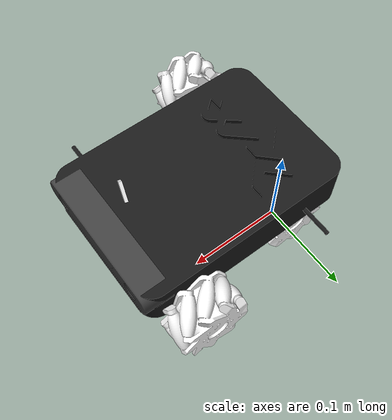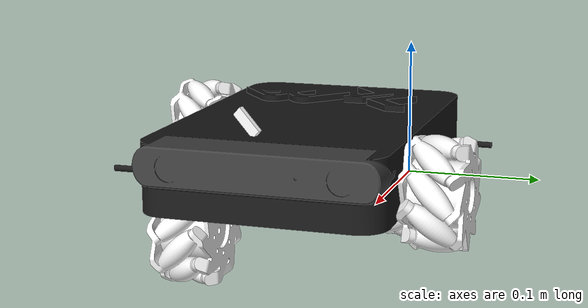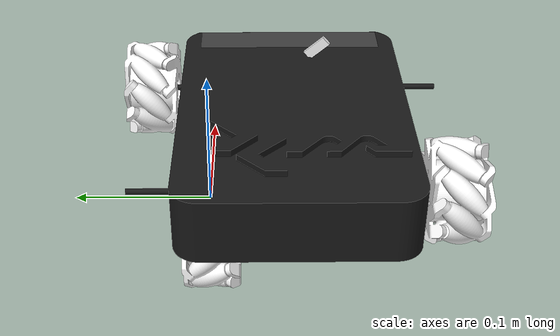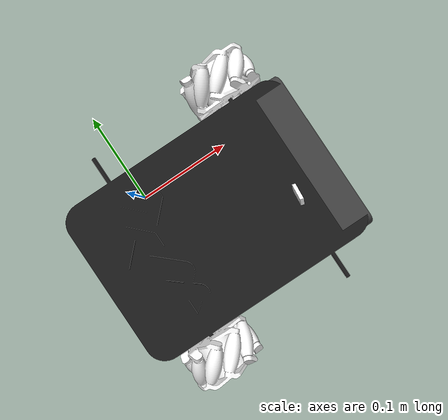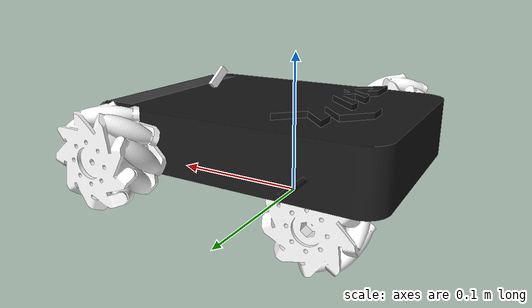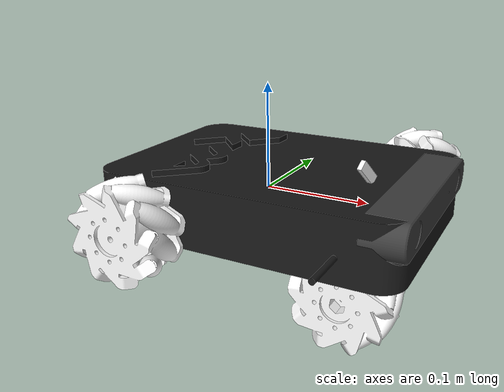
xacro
<?xml version="1.0"?>
<robot xmlns:xacro="http://www.ros.org/wiki/xacro" name="ma_robot">

  <!-- Materials (shared across all assemblies) -->
  <material name="PA_11_Nylon_HP_11_30_with_EOS_P_396_3D_Printer">
    <color rgba="0.247 0.247 0.247 1.0"/>
  </material>
  <material name="Steel">
    <color rgba="1.000 1.000 1.000 1.0"/>
  </material>
  <material name="Acetal_Resin_Black">
    <color rgba="0.098 0.098 0.098 1.0"/>
  </material>

  <!-- Assembly includes -->
  <xacro:include filename="$(find ma_robot_description)/urdf/assemblies/front_left_wheel_link.urdf.xacro"/>
  <xacro:include filename="$(find ma_robot_description)/urdf/assemblies/rear_right_wheel_link.urdf.xacro"/>
  <xacro:include filename="$(find ma_robot_description)/urdf/assemblies/front_right_wheel_link.urdf.xacro"/>
  <xacro:include filename="$(find ma_robot_description)/urdf/assemblies/rear_left_wheel_link.urdf.xacro"/>
  <xacro:include filename="$(find ma_robot_description)/urdf/assemblies/base_link.urdf.xacro"/>

  <!-- Instantiate assemblies -->
  <xacro:front_left_wheel_link prefix=""/>
  <xacro:rear_right_wheel_link prefix=""/>
  <xacro:front_right_wheel_link prefix=""/>
  <xacro:rear_left_wheel_link prefix=""/>
  <xacro:base_link prefix=""/>

  <!-- Mount joints (cross-assembly connections) -->
  <!-- These define how assemblies connect to each other. -->
  <!-- When swapping a dummy assembly with a real part, -->
  <!-- update the include + macro call above, and adjust -->
  <!-- parent/child link names in the mount joint below. -->

  <joint name="Revolute_5" type="continuous">
    <parent link="base_link"/>
    <child link="Part2_1"/>
    <origin xyz="0.260000 0.000000 0.000000" rpy="-1.570796 0.000000 0.000000"/>
    <axis xyz="0.000000 0.000000 1.000000"/>
    <limit effort="100.0" velocity="1.00"/>
  </joint>

  <joint name="Revolute_6" type="continuous">
    <parent link="base_link"/>
    <child link="Part2_2"/>
    <origin xyz="-0.040000 -0.362000 0.040000" rpy="1.570796 0.000000 0.000000"/>
    <axis xyz="0.000000 0.000000 1.000000"/>
    <limit effort="100.0" velocity="1.00"/>
  </joint>

  <joint name="Revolute_8" type="continuous">
    <parent link="base_link"/>
    <child link="Part2_1_Mirror"/>
    <origin xyz="0.260000 -0.362000 0.040000" rpy="1.570796 0.000000 0.000000"/>
    <axis xyz="0.000000 0.000000 1.000000"/>
    <limit effort="100.0" velocity="1.00"/>
  </joint>

  <joint name="Revolute_9" type="continuous">
    <parent link="base_link"/>
    <child link="Part2_2_Mirror"/>
    <origin xyz="-0.040000 0.026000 0.000000" rpy="-1.570796 0.000000 0.000000"/>
    <axis xyz="0.000000 0.000000 1.000000"/>
    <limit effort="100.0" velocity="1.00"/>
  </joint>

  <!-- ROS 2 control: generated generic system -->
  <ros2_control name="base_link_system" type="system">
    <hardware>
      <plugin>mock_components/GenericSystem</plugin>
      <param name="cmd_topic">sim/base_link_system/cmd</param>
      <param name="state_topic">sim/base_link_system/state</param>
    </hardware>

    <joint name="Revolute_5">
      <command_interface name="position"/>
      <command_interface name="velocity"/>
      <state_interface name="position">
        <param name="initial_value">0.0</param>
      </state_interface>
      <state_interface name="velocity"/>
      <state_interface name="effort"/>
    </joint>
    <joint name="Revolute_6">
      <command_interface name="position"/>
      <command_interface name="velocity"/>
      <state_interface name="position">
        <param name="initial_value">0.0</param>
      </state_interface>
      <state_interface name="velocity"/>
      <state_interface name="effort"/>
    </joint>
    <joint name="Revolute_8">
      <command_interface name="position"/>
      <command_interface name="velocity"/>
      <state_interface name="position">
        <param name="initial_value">0.0</param>
      </state_interface>
      <state_interface name="velocity"/>
      <state_interface name="effort"/>
    </joint>
    <joint name="Revolute_9">
      <command_interface name="position"/>
      <command_interface name="velocity"/>
      <state_interface name="position">
        <param name="initial_value">0.0</param>
      </state_interface>
      <state_interface name="velocity"/>
      <state_interface name="effort"/>
    </joint>
  </ros2_control>

</robot>

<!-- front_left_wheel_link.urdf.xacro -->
<robot xmlns:xacro="http://www.ros.org/wiki/xacro" name="front_left_wheel_link_macro">

  <xacro:macro name="front_left_wheel_link" params="prefix">

    <!-- Links -->
    <link name="${prefix}Part2_1">
      <inertial>
        <origin xyz="-0.129964 -0.020034 0.052271" rpy="0 0 0"/>
        <mass value="0.967990"/>
        <inertia ixx="4.354820e-04" ixy="-1.765367e-07" ixz="9.904484e-07"
                 iyy="4.318266e-04" iyz="1.096024e-06" izz="6.297403e-04"/>
      </inertial>
      <visual>
        <origin xyz="-0.130000 -0.020000 0.070000" rpy="-1.570796 0.000000 0.000000"/>
        <geometry>
          <mesh filename="package://ma_robot_description/meshes/front_left_wheel_link/Part2_1.dae" scale="1 1 1"/>
        </geometry>
        <material name="Steel"/>
      </visual>
      <collision>
        <origin xyz="-0.130000 -0.020000 0.070000" rpy="-1.570796 0.000000 0.000000"/>
        <geometry>
          <mesh filename="package://ma_robot_description/meshes/front_left_wheel_link/Part2_1_collision.stl" scale="0.01 0.01 0.01"/>
        </geometry>
      </collision>
    </link>

  </xacro:macro>

</robot>

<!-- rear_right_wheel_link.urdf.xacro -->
<robot xmlns:xacro="http://www.ros.org/wiki/xacro" name="rear_right_wheel_link_macro">

  <xacro:macro name="rear_right_wheel_link" params="prefix">

    <!-- Links -->
    <link name="${prefix}Part2_2">
      <inertial>
        <origin xyz="0.020036 -0.020034 -0.185729" rpy="0 0 0"/>
        <mass value="0.967990"/>
        <inertia ixx="4.354820e-04" ixy="-1.765367e-07" ixz="9.904484e-07"
                 iyy="4.318266e-04" iyz="1.096024e-06" izz="6.297403e-04"/>
      </inertial>
      <visual>
        <origin xyz="0.020000 -0.020000 -0.168000" rpy="-1.570796 0.000000 0.000000"/>
        <geometry>
          <mesh filename="package://ma_robot_description/meshes/rear_right_wheel_link/Part2_2.dae" scale="1 1 1"/>
        </geometry>
        <material name="Steel"/>
      </visual>
      <collision>
        <origin xyz="0.020000 -0.020000 -0.168000" rpy="-1.570796 0.000000 0.000000"/>
        <geometry>
          <mesh filename="package://ma_robot_description/meshes/rear_right_wheel_link/Part2_2_collision.stl" scale="0.01 0.01 0.01"/>
        </geometry>
      </collision>
    </link>

  </xacro:macro>

</robot>

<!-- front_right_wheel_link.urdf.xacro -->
<robot xmlns:xacro="http://www.ros.org/wiki/xacro" name="front_right_wheel_link_macro">

  <xacro:macro name="front_right_wheel_link" params="prefix">

    <!-- Links -->
    <link name="${prefix}Part2_1_Mirror">
      <inertial>
        <origin xyz="-0.129964 -0.019966 -0.185729" rpy="0 0 0"/>
        <mass value="0.967990"/>
        <inertia ixx="4.354820e-04" ixy="1.765368e-07" ixz="9.904484e-07"
                 iyy="4.318266e-04" iyz="-1.096024e-06" izz="6.297403e-04"/>
      </inertial>
      <visual>
        <origin xyz="-0.130000 -0.020000 -0.168000" rpy="-1.570796 0.000000 0.000000"/>
        <geometry>
          <mesh filename="package://ma_robot_description/meshes/front_right_wheel_link/Part2_1_Mirror.dae" scale="1 1 1"/>
        </geometry>
        <material name="Steel"/>
      </visual>
      <collision>
        <origin xyz="-0.130000 -0.020000 -0.168000" rpy="-1.570796 0.000000 0.000000"/>
        <geometry>
          <mesh filename="package://ma_robot_description/meshes/front_right_wheel_link/Part2_1_Mirror_collision.stl" scale="0.01 0.01 0.01"/>
        </geometry>
      </collision>
    </link>

  </xacro:macro>

</robot>

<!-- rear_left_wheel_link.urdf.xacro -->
<robot xmlns:xacro="http://www.ros.org/wiki/xacro" name="rear_left_wheel_link_macro">

  <xacro:macro name="rear_left_wheel_link" params="prefix">

    <!-- Links -->
    <link name="${prefix}Part2_2_Mirror">
      <inertial>
        <origin xyz="0.020036 -0.019966 0.025271" rpy="0 0 0"/>
        <mass value="0.967990"/>
        <inertia ixx="4.354820e-04" ixy="1.765368e-07" ixz="9.904484e-07"
                 iyy="4.318266e-04" iyz="-1.096024e-06" izz="6.297403e-04"/>
      </inertial>
      <visual>
        <origin xyz="0.020000 -0.020000 0.043000" rpy="-1.570796 0.000000 0.000000"/>
        <geometry>
          <mesh filename="package://ma_robot_description/meshes/rear_left_wheel_link/Part2_2_Mirror.dae" scale="1 1 1"/>
        </geometry>
        <material name="Steel"/>
      </visual>
      <collision>
        <origin xyz="0.020000 -0.020000 0.043000" rpy="-1.570796 0.000000 0.000000"/>
        <geometry>
          <mesh filename="package://ma_robot_description/meshes/rear_left_wheel_link/Part2_2_Mirror_collision.stl" scale="0.01 0.01 0.01"/>
        </geometry>
      </collision>
    </link>

  </xacro:macro>

</robot>

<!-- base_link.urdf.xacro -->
<robot xmlns:xacro="http://www.ros.org/wiki/xacro" name="base_link_macro">

  <xacro:macro name="base_link" params="prefix">

    <!-- Links -->
    <link name="${prefix}base_link">
      <inertial>
        <origin xyz="0.041588 -0.062494 0.024412" rpy="0 0 0"/>
        <mass value="2.898778"/>
        <inertia ixx="7.972007e-03" ixy="9.038509e-07" ixz="2.755930e-04"
                 iyy="1.378869e-02" iyz="-4.482345e-07" izz="2.052341e-02"/>
      </inertial>
      <visual>
        <origin xyz="0.000000 0.000000 0.000000" rpy="0.000000 0.000000 0.000000"/>
        <geometry>
          <mesh filename="package://ma_robot_description/meshes/base_link/base_link.dae" scale="1 1 1"/>
        </geometry>
        <material name="Acetal_Resin_Black"/>
      </visual>
      <collision>
        <origin xyz="0.000000 0.000000 0.000000" rpy="0.000000 0.000000 0.000000"/>
        <geometry>
          <mesh filename="package://ma_robot_description/meshes/base_link/base_link_collision.stl" scale="0.01 0.01 0.01"/>
        </geometry>
      </collision>
    </link>

    <link name="${prefix}zed2_camera_link">
      <inertial>
        <origin xyz="0.000000 0.015505 0.042389" rpy="0 0 0"/>
        <mass value="0.178229"/>
        <inertia ixx="2.662726e-05" ixy="-3.215230e-09" ixz="-1.621734e-09"
                 iyy="4.362977e-04" iyz="-2.967393e-09" izz="4.390806e-04"/>
      </inertial>
      <visual>
        <origin xyz="0.000000 0.000000 0.000000" rpy="0.000000 0.000000 0.000000"/>
        <geometry>
          <mesh filename="package://ma_robot_description/meshes/base_link/zed2_camera_link.dae" scale="1 1 1"/>
        </geometry>
        <material name="PA_11_Nylon_HP_11_30_with_EOS_P_396_3D_Printer"/>
      </visual>
      <collision>
        <origin xyz="0.000000 0.000000 0.000000" rpy="0.000000 0.000000 0.000000"/>
        <geometry>
          <mesh filename="package://ma_robot_description/meshes/base_link/zed2_camera_link_collision.stl" scale="0.01 0.01 0.01"/>
        </geometry>
      </collision>
    </link>

    <link name="${prefix}rplidar_s2_link">
      <inertial>
        <origin xyz="-0.595013 0.532942 0.012880" rpy="0 0 0"/>
        <mass value="0.203764"/>
        <inertia ixx="1.351079e-04" ixy="-7.653496e-09" ixz="1.410544e-08"
                 iyy="1.362177e-04" iyz="3.930765e-08" izz="2.370283e-04"/>
      </inertial>
      <visual>
        <origin xyz="0.000000 0.000000 0.000000" rpy="0.000000 0.000000 0.000000"/>
        <geometry>
          <mesh filename="package://ma_robot_description/meshes/base_link/rplidar_s2_link.dae" scale="1 1 1"/>
        </geometry>
        <material name="Steel"/>
      </visual>
      <collision>
        <origin xyz="0.000000 0.000000 0.000000" rpy="0.000000 0.000000 0.000000"/>
        <geometry>
          <mesh filename="package://ma_robot_description/meshes/base_link/rplidar_s2_link_collision.stl" scale="0.01 0.01 0.01"/>
        </geometry>
      </collision>
    </link>

    <!-- Joints (internal to assembly) -->
    <joint name="${prefix}Rigid_1" type="fixed">
      <parent link="${prefix}base_link"/>
      <child link="${prefix}zed2_camera_link"/>
      <origin xyz="0.145000 -0.062500 -0.007371" rpy="0.000000 0.000000 -1.570796"/>
    </joint>

    <joint name="${prefix}Rigid_2" type="fixed">
      <parent link="${prefix}base_link"/>
      <child link="${prefix}rplidar_s2_link"/>
      <origin xyz="-0.433747 -0.657506 0.046815" rpy="0.000000 0.000000 -1.570796"/>
    </joint>

  </xacro:macro>

</robot>
